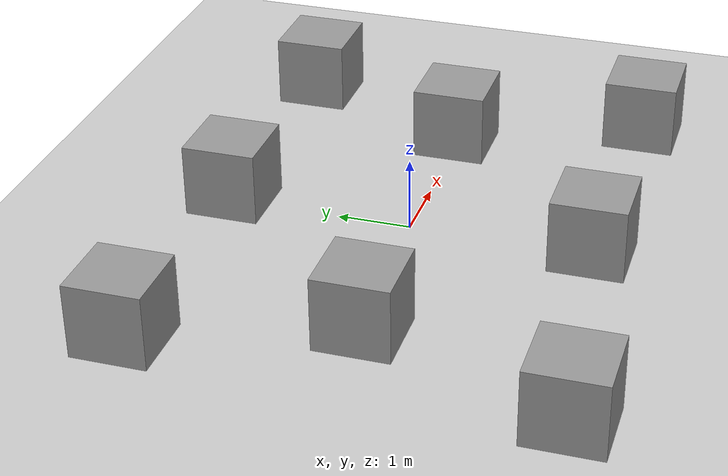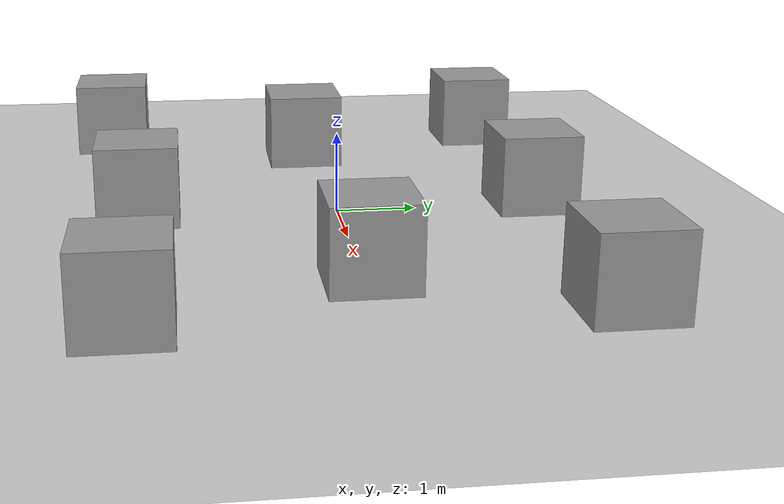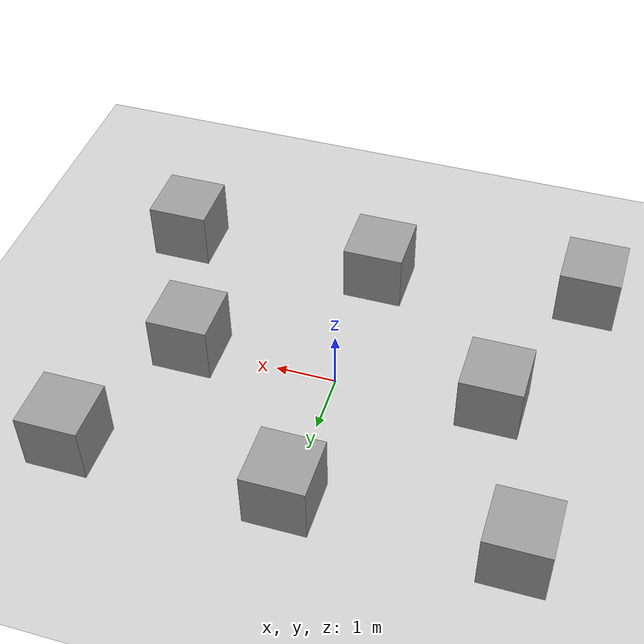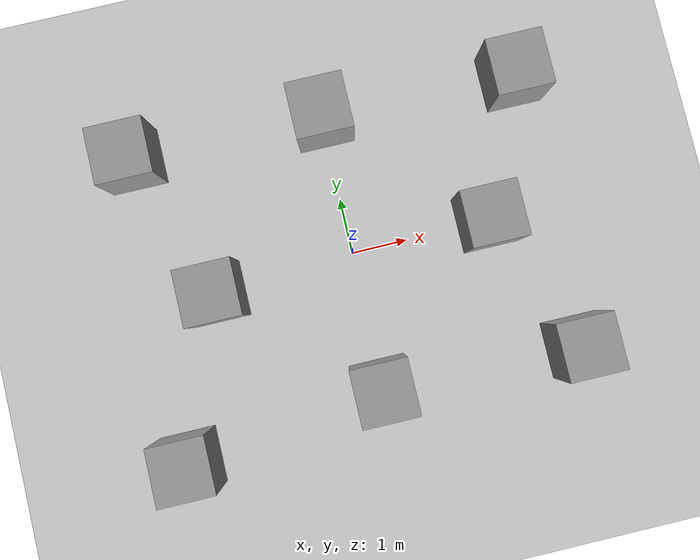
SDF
<sdf version="1.6">
 <world name="default">
  <model name="ground_plane">
   <static>1</static>
   <link name="link">
    <collision name="collision">
     <geometry><plane><normal>0 0 1</normal><size>100 100</size></plane></geometry>
     <surface><friction><ode><mu>100</mu><mu2>50</mu2></ode></friction></surface>
    </collision>
    <visual name="visual">
     <cast_shadows>0</cast_shadows>
     <geometry><plane><normal>0 0 1</normal><size>100 100</size></plane></geometry>
     <material>
      <script><uri>file://media/materials/scripts/gazebo.material</uri><name>Gazebo/Grey</name></script>
     </material>
    </visual>
   </link>
  </model>
  <light name="sun" type="directional">
   <pose>0 0 10 0 -0 0</pose>
   <diffuse>0.8 0.8 0.8 1</diffuse>
   <specular>0.2 0.2 0.2 1</specular>
   <attenuation>
    <range>1000</range>
    <constant>0.9</constant>
    <linear>0.01</linear>
    <quadratic>0.001</quadratic>
   </attenuation>
   <direction>-0.5 0.1 -0.9</direction>
  </light>
  <plugin name="ros_interface_plugin" filename="librotors_gazebo_ros_interface_plugin.so"/>
  <spherical_coordinates>
   <surface_model>EARTH_WGS84</surface_model>
   <latitude_deg>47.3667</latitude_deg>
   <longitude_deg>8.55</longitude_deg>
   <elevation>500</elevation>
   <heading_deg>0</heading_deg>
  </spherical_coordinates>
  <physics name="default_physics" default="0" type="ode">
   <ode>
    <solver>
     <type>quick</type>
     <iters>1000</iters>
     <sor>1.3</sor>
     <use_dynamic_moi_rescaling>0</use_dynamic_moi_rescaling>
    </solver>
    <constraints>
     <cfm>0</cfm>
     <erp>0.2</erp>
     <contact_max_correcting_vel>100</contact_max_correcting_vel>
     <contact_surface_layer>0.001</contact_surface_layer>
    </constraints>
   </ode>
   <max_step_size>0.01</max_step_size>
   <real_time_factor>1</real_time_factor>
   <real_time_update_rate>100</real_time_update_rate>
  </physics>
  <gravity>0 0 -9.8</gravity>
  <magnetic_field>6e-06 2.3e-05 -4.2e-05</magnetic_field>
  <atmosphere type="adiabatic"/>
  <scene><ambient>0.4 0.4 0.4 1</ambient><background>0.7 0.7 0.7 1</background><shadows>1</shadows></scene>
  <model name="unit_box">
   <pose>0.004074 2.49971 0.5 0 -0 0</pose>
   <link name="link">
    <inertial>
     <mass>1</mass>
     <inertia>
      <ixx>0.166667</ixx>
      <ixy>0</ixy>
      <ixz>0</ixz>
      <iyy>0.166667</iyy>
      <iyz>0</iyz>
      <izz>0.166667</izz>
     </inertia>
    </inertial>
    <collision name="collision"><geometry><box><size>1 1 1</size></box></geometry></collision>
    <visual name="visual">
     <geometry><box><size>1 1 1</size></box></geometry>
     <material>
      <script><name>Gazebo/Grey</name><uri>file://media/materials/scripts/gazebo.material</uri></script>
     </material>
    </visual>
   </link>
  </model>
  <model name="unit_box_0">
   <pose>-0.038209 -2.46338 0.5 0 -0 0</pose>
   <link name="link">
    <inertial>
     <mass>1</mass>
     <inertia>
      <ixx>0.166667</ixx>
      <ixy>0</ixy>
      <ixz>0</ixz>
      <iyy>0.166667</iyy>
      <iyz>0</iyz>
      <izz>0.166667</izz>
     </inertia>
    </inertial>
    <collision name="collision"><geometry><box><size>1 1 1</size></box></geometry></collision>
    <visual name="visual">
     <geometry><box><size>1 1 1</size></box></geometry>
     <material>
      <script><name>Gazebo/Grey</name><uri>file://media/materials/scripts/gazebo.material</uri></script>
     </material>
    </visual>
   </link>
  </model>
  <model name="unit_box_1">
   <pose>2.45649 0.02462 0.5 0 -0 0</pose>
   <link name="link">
    <inertial>
     <mass>1</mass>
     <inertia>
      <ixx>0.166667</ixx>
      <ixy>0</ixy>
      <ixz>0</ixz>
      <iyy>0.166667</iyy>
      <iyz>0</iyz>
      <izz>0.166667</izz>
     </inertia>
    </inertial>
    <collision name="collision"><geometry><box><size>1 1 1</size></box></geometry></collision>
    <visual name="visual">
     <geometry><box><size>1 1 1</size></box></geometry>
     <material>
      <script><name>Gazebo/Grey</name><uri>file://media/materials/scripts/gazebo.material</uri></script>
     </material>
    </visual>
   </link>
  </model>
  <model name="unit_box_2">
   <pose>-2.5355 -0.163465 0.5 0 -0 0</pose>
   <link name="link">
    <inertial>
     <mass>1</mass>
     <inertia>
      <ixx>0.166667</ixx>
      <ixy>0</ixy>
      <ixz>0</ixz>
      <iyy>0.166667</iyy>
      <iyz>0</iyz>
      <izz>0.166667</izz>
     </inertia>
    </inertial>
    <collision name="collision"><geometry><box><size>1 1 1</size></box></geometry></collision>
    <visual name="visual">
     <geometry><box><size>1 1 1</size></box></geometry>
     <material>
      <script><name>Gazebo/Grey</name><uri>file://media/materials/scripts/gazebo.material</uri></script>
     </material>
    </visual>
   </link>
  </model>
  <model name="unit_box_3">
   <pose>3.50402 2.44479 0.5 0 -0 0</pose>
   <link name="link">
    <inertial>
     <mass>1</mass>
     <inertia>
      <ixx>0.166667</ixx>
      <ixy>0</ixy>
      <ixz>0</ixz>
      <iyy>0.166667</iyy>
      <iyz>0</iyz>
      <izz>0.166667</izz>
     </inertia>
    </inertial>
    <collision name="collision"><geometry><box><size>1 1 1</size></box></geometry></collision>
    <visual name="visual">
     <geometry><box><size>1 1 1</size></box></geometry>
     <material>
      <script><name>Gazebo/Grey</name><uri>file://media/materials/scripts/gazebo.material</uri></script>
     </material>
    </visual>
   </link>
  </model>
  <model name="unit_box_4">
   <pose>3.47305 -2.51387 0.5 0 -0 0</pose>
   <link name="link">
    <inertial>
     <mass>1</mass>
     <inertia>
      <ixx>0.166667</ixx>
      <ixy>0</ixy>
      <ixz>0</ixz>
      <iyy>0.166667</iyy>
      <iyz>0</iyz>
      <izz>0.166667</izz>
     </inertia>
    </inertial>
    <collision name="collision"><geometry><box><size>1 1 1</size></box></geometry></collision>
    <visual name="visual">
     <geometry><box><size>1 1 1</size></box></geometry>
     <material>
      <script><name>Gazebo/Grey</name><uri>file://media/materials/scripts/gazebo.material</uri></script>
     </material>
    </visual>
   </link>
  </model>
  <model name="unit_box_5">
   <pose>-3.47166 2.52547 0.5 0 -0 0</pose>
   <link name="link">
    <inertial>
     <mass>1</mass>
     <inertia>
      <ixx>0.166667</ixx>
      <ixy>0</ixy>
      <ixz>0</ixz>
      <iyy>0.166667</iyy>
      <iyz>0</iyz>
      <izz>0.166667</izz>
     </inertia>
    </inertial>
    <collision name="collision"><geometry><box><size>1 1 1</size></box></geometry></collision>
    <visual name="visual">
     <geometry><box><size>1 1 1</size></box></geometry>
     <material>
      <script><name>Gazebo/Grey</name><uri>file://media/materials/scripts/gazebo.material</uri></script>
     </material>
    </visual>
   </link>
  </model>
  <model name="unit_box_6">
   <pose>-3.59231 -2.92744 0.5 0 -0 0</pose>
   <link name="link">
    <inertial>
     <mass>1</mass>
     <inertia>
      <ixx>0.166667</ixx>
      <ixy>0</ixy>
      <ixz>0</ixz>
      <iyy>0.166667</iyy>
      <iyz>0</iyz>
      <izz>0.166667</izz>
     </inertia>
    </inertial>
    <collision name="collision"><geometry><box><size>1 1 1</size></box></geometry></collision>
    <visual name="visual">
     <geometry><box><size>1 1 1</size></box></geometry>
     <material>
      <script><name>Gazebo/Grey</name><uri>file://media/materials/scripts/gazebo.material</uri></script>
     </material>
    </visual>
   </link>
  </model>
  <light name="user_point_light_0" type="point">
   <pose>6.64557 -0.298504 1 0 -0 0</pose>
   <diffuse>0.5 0.5 0.5 1</diffuse>
   <specular>0.1 0.1 0.1 1</specular>
   <attenuation>
    <range>20</range>
    <constant>0.5</constant>
    <linear>0.01</linear>
    <quadratic>0.001</quadratic>
   </attenuation>
   <cast_shadows>0</cast_shadows>
   <direction>0 0 -1</direction>
  </light>
  <light name="user_point_light_1" type="point">
   <pose>-7.47616 -0.0778 1 0 -0 0</pose>
   <diffuse>0.5 0.5 0.5 1</diffuse>
   <specular>0.1 0.1 0.1 1</specular>
   <attenuation>
    <range>20</range>
    <constant>0.5</constant>
    <linear>0.01</linear>
    <quadratic>0.001</quadratic>
   </attenuation>
   <cast_shadows>0</cast_shadows>
   <direction>0 0 -1</direction>
  </light>
  <light name="user_point_light_2" type="point">
   <pose>0.275725 8.51731 1 0 -0 0</pose>
   <diffuse>0.5 0.5 0.5 1</diffuse>
   <specular>0.1 0.1 0.1 1</specular>
   <attenuation>
    <range>20</range>
    <constant>0.5</constant>
    <linear>0.01</linear>
    <quadratic>0.001</quadratic>
   </attenuation>
   <cast_shadows>0</cast_shadows>
   <direction>0 0 -1</direction>
  </light>
  <light name="user_point_light_3" type="point">
   <pose>0.33381 -7.82723 1 0 -0 0</pose>
   <diffuse>0.5 0.5 0.5 1</diffuse>
   <specular>0.1 0.1 0.1 1</specular>
   <attenuation>
    <range>20</range>
    <constant>0.5</constant>
    <linear>0.01</linear>
    <quadratic>0.001</quadratic>
   </attenuation>
   <cast_shadows>0</cast_shadows>
   <direction>0 0 -1</direction>
  </light>
 </world>
</sdf>
